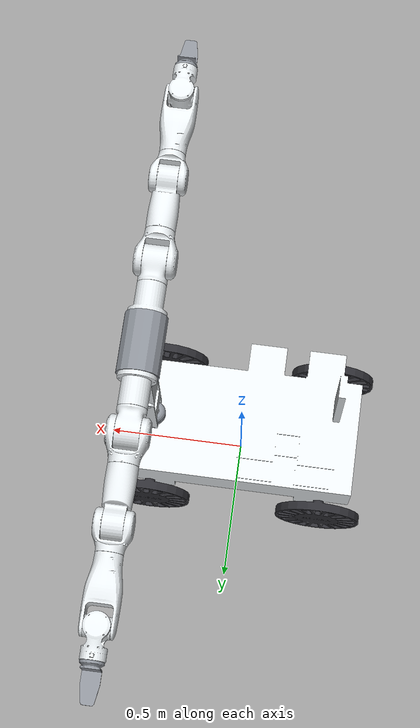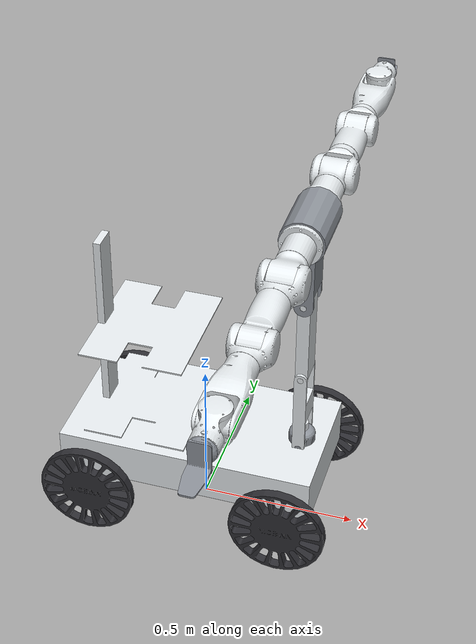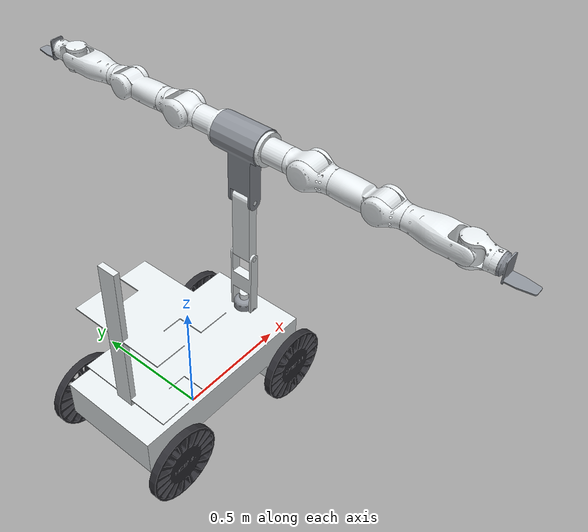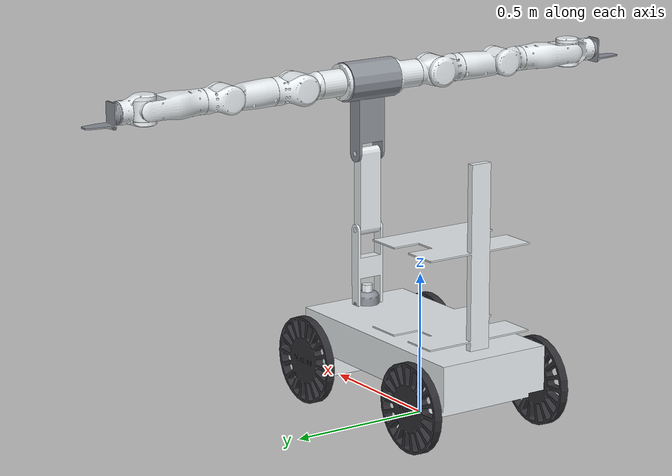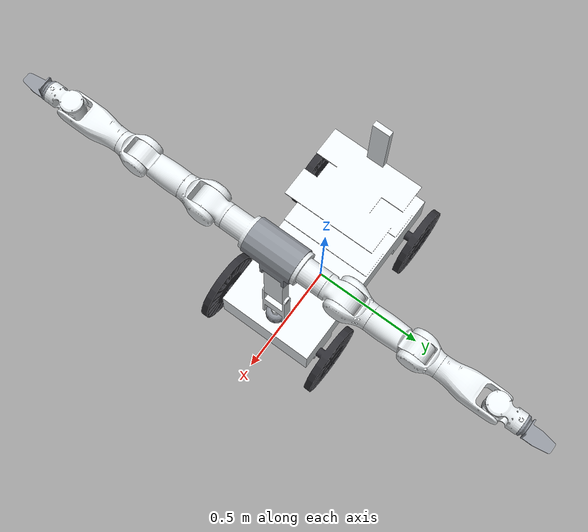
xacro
<?xml version="1.0"?>
<robot name="dhl" xmlns:xacro="http://www.ros.org/wiki/xacro">

  <xacro:arg name="wheels_fixed" default="false" />

  <!-- ============================ units ============================ -->
  <xacro:property name="mm" value="0.001" />
  <xacro:property name="PI" value="3.14159265358979" />
  <xacro:property name="mesh_scale" value="0.001 0.001 0.001" />

  <!-- Placeholders: the export gives effort=0 velocity=0, which no
       controller can use. Override on the xacro command line if needed. -->
  <xacro:property name="arm_effort" value="100.0" />
  <xacro:property name="arm_velocity" value="3.14" />
  <xacro:property name="torso_effort" value="300.0" />
  <xacro:property name="torso_velocity" value="1.57" />
  <xacro:property name="wheel_effort" value="100.0" />
  <xacro:property name="wheel_velocity" value="10.0" />

  <!-- TODO: torso ranges were not supplied - these are placeholders. -->
  <xacro:property name="torso1_lower" value="${-PI}" />
  <xacro:property name="torso1_upper" value="${PI}" />
  <xacro:property name="torso2_lower" value="${-PI/2}" />
  <xacro:property name="torso2_upper" value="${PI/2}" />
  <xacro:property name="torso3_lower" value="${-2.618}" />
  <xacro:property name="torso3_upper" value="${2.618}" />
  <xacro:property name="torso4_lower" value="${-2.618}" />
  <xacro:property name="torso4_upper" value="${2.618}" />

  <xacro:include filename="$(find dhl_description)/urdf/arm7_left.xacro" />
  <xacro:include filename="$(find dhl_description)/urdf/arm7_right.xacro" />

  <!-- ========================== materials ========================== -->
  <material name="dhl_light">
    <color rgba="0.898 0.918 0.929 1.0" />
  </material>
  <material name="dhl_grey">
    <color rgba="0.55 0.57 0.60 1.0" />
  </material>
  <material name="dhl_dark">
    <color rgba="0.18 0.18 0.20 1.0" />
  </material>

  <!-- Body built from one of the STL/ meshes (mm -> m). -->
  <xacro:macro name="dhl_body" params="mesh material">
    <visual>
      <origin xyz="0 0 0" rpy="0 0 0" />
      <geometry>
        <mesh filename="package://dhl_description/meshes/${mesh}" scale="${mesh_scale}" />
      </geometry>
      <material name="${material}" />
    </visual>
    <collision>
      <origin xyz="0 0 0" rpy="0 0 0" />
      <geometry>
        <mesh filename="package://dhl_description/meshes/${mesh}" scale="${mesh_scale}" />
      </geometry>
    </collision>
  </xacro:macro>

  <!-- ========================= mobile base ========================= -->
  <!-- Ground-projection frame; wheel radius is 155 mm, so the base
       origin (= wheel axle height) sits 155 mm above the floor. -->
  <link name="base_footprint" />

  <joint name="base_footprint_joint" type="fixed">
    <origin xyz="0 0 ${155*mm}" rpy="0 0 0" />
    <parent link="base_footprint" />
    <child link="mobile_base" />
  </joint>

  <link name="mobile_base">
    <xacro:dhl_body mesh="mobile_base.stl" material="dhl_light" />
  </link>

  <!-- Wheels: axis is the local Z, turned into a pitch axis by roll=90 deg.
       The four meshes are already handed, so all four share the same rpy. -->
  <xacro:macro name="dhl_wheel" params="name x y">
    <xacro:unless value="$(arg wheels_fixed)">
      <joint name="${name}_joint" type="continuous">
        <origin xyz="${x*mm} ${y*mm} 0" rpy="${radians(90)} 0 0" />
        <parent link="mobile_base" />
        <child link="${name}_Link" />
        <axis xyz="0 0 1" />
        <limit effort="${wheel_effort}" velocity="${wheel_velocity}" />
      </joint>
    </xacro:unless>
    <xacro:if value="$(arg wheels_fixed)">
      <joint name="${name}_joint" type="fixed">
        <origin xyz="${x*mm} ${y*mm} 0" rpy="${radians(90)} 0 0" />
        <parent link="mobile_base" />
        <child link="${name}_Link" />
      </joint>
    </xacro:if>
    <link name="${name}_Link">
      <xacro:dhl_body mesh="${name}.stl" material="dhl_dark" />
    </link>
  </xacro:macro>

  <xacro:dhl_wheel name="wheel_fr" x="316"  y="278.3"  />
  <xacro:dhl_wheel name="wheel_rr" x="-316" y="278.3"  />
  <xacro:dhl_wheel name="wheel_fl" x="316"  y="-278.3" />
  <xacro:dhl_wheel name="wheel_rl" x="-316" y="-278.3" />

  <!-- ============================ torso ============================ -->
  <joint name="torso_joint1" type="revolute">
    <origin xyz="${323*mm} 0 ${119.5*mm}" rpy="0 0 0" />
    <parent link="mobile_base" />
    <child link="torso_link1" />
    <axis xyz="0 0 1" />
    <limit lower="${torso1_lower}" upper="${torso1_upper}"
           effort="${torso_effort}" velocity="${torso_velocity}" />
  </joint>
  <link name="torso_link1">
    <xacro:dhl_body mesh="torso_joint1.stl" material="dhl_grey" />
  </link>

  <joint name="torso_joint2" type="revolute">
    <origin xyz="0 0 ${43*mm}" rpy="${radians(90)} 0 0" />
    <parent link="torso_link1" />
    <child link="torso_link2" />
    <axis xyz="0 0 1" />
    <limit lower="${torso2_lower}" upper="${torso2_upper}"
           effort="${torso_effort}" velocity="${torso_velocity}" />
  </joint>
  <link name="torso_link2">
    <xacro:dhl_body mesh="torso_joint2.stl" material="dhl_light" />
  </link>

  <joint name="torso_joint3" type="revolute">
    <origin xyz="0 ${275*mm} 0" rpy="0 0 0" />
    <parent link="torso_link2" />
    <child link="torso_link3" />
    <axis xyz="0 0 1" />
    <limit lower="${torso3_lower}" upper="${torso3_upper}"
           effort="${torso_effort}" velocity="${torso_velocity}" />
  </joint>
  <link name="torso_link3">
    <xacro:dhl_body mesh="torso_joint3.stl" material="dhl_light" />
  </link>

  <joint name="torso_joint4" type="revolute">
    <origin xyz="0 ${275*mm} 0" rpy="0 0 0" />
    <parent link="torso_link3" />
    <child link="torso_link4" />
    <axis xyz="0 0 1" />
    <limit lower="${torso4_lower}" upper="${torso4_upper}"
           effort="${torso_effort}" velocity="${torso_velocity}" />
  </joint>
  <link name="torso_link4">
    <xacro:dhl_body mesh="torso_joint4.stl" material="dhl_grey" />
  </link>

  <!-- ======================= arm mount brackets ======================= -->
  <joint name="right_mount" type="fixed">
    <origin xyz="0 ${260.5*mm} ${-100*mm}" rpy="${radians(180)} 0 ${radians(90)}" />
    <parent link="torso_link4" />
    <child link="right_arm_bracket" />
  </joint>
  <link name="right_arm_bracket" />

  <joint name="left_mount" type="fixed">
    <origin xyz="0 ${260.5*mm} ${100*mm}" rpy="0 0 ${radians(90)}" />
    <parent link="torso_link4" />
    <child link="left_arm_bracket" />
  </joint>
  <link name="left_arm_bracket" />

  <!-- ============================= arms ============================= -->
  <xacro:arm7_right suffix="_R" parent="right_arm_bracket">
    <origin xyz="0 0 0" rpy="0 0 0" />
  </xacro:arm7_right>

  <xacro:arm7_left suffix="_L" parent="left_arm_bracket">
    <origin xyz="0 0 0" rpy="0 0 0" />
  </xacro:arm7_left>

  <!-- ============================= hands ============================= -->
  <xacro:macro name="dhl_hand" params="suffix">
    <joint name="hand_mount${suffix}" type="fixed">
      <origin xyz="${-106*mm} 0 0" rpy="${radians(90)} ${radians(90)} 0" />
      <parent link="wrist2_Link${suffix}" />
      <child link="dhl_hand_4${suffix}" />
    </joint>
    <link name="dhl_hand_4${suffix}">
      <xacro:dhl_body mesh="dhl_hand_4.stl" material="dhl_grey" />
    </link>
    <!-- Grasp frame. The hand mesh runs from y = +5 mm to y = -120 mm in
         its own frame, so -120 mm on Y is the fingertip plane. -->
    <joint name="tcp_joint${suffix}" type="fixed">
      <origin xyz="0 ${-120*mm} 0" rpy="0 0 0" />
      <parent link="dhl_hand_4${suffix}" />
      <child link="tcp${suffix}" />
    </joint>
    <link name="tcp${suffix}" />
  </xacro:macro>

  <xacro:dhl_hand suffix="_R" />
  <xacro:dhl_hand suffix="_L" />

</robot>

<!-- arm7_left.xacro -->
<robot xmlns:xacro="http://www.ros.org/wiki/xacro">

  <xacro:macro name="arm7_left" params="suffix parent *origin">

    <joint name="arm_mount${suffix}" type="fixed">
      <xacro:insert_block name="origin" />
      <parent link="${parent}" />
      <child link="base_link${suffix}" />
    </joint>
    <link name="base_link${suffix}">
      <inertial>
        <origin xyz="-0.000862764030764301 0.00031138988302587 0.052915046110611" rpy="0 0 0" />
        <mass value="2.2944674733364" />
        <inertia ixx="0.0039428847098136" ixy="-8.66237396424278E-06" ixz="2.07592816683262E-06" iyy="0.00394284986069691" iyz="-2.3747123563094E-06" izz="0.00292966429948562" />
      </inertial>
      <visual>
        <origin xyz="0 0 0" rpy="0 0 0" />
        <geometry>
          <mesh filename="package://dhl_description/meshes/left_arm/base_link.STL" />
        </geometry>
        <material name="dhl_light">
        </material>
      </visual>
      <collision>
        <origin xyz="0 0 0" rpy="0 0 0" />
        <geometry>
          <mesh filename="package://dhl_description/meshes/left_arm/base_link.STL" />
        </geometry>
      </collision>
    </link>
    <link name="shoulder_Link${suffix}">
      <inertial>
        <origin xyz="0.000000 0.004800 -0.015770" rpy="0 0 0" />
        <mass value="2.22" />
        <inertia ixx="0.00307179" ixy="-0.00000013" ixz="0.00000216" iyy="0.00272992" iyz="0.00014996" izz="0.00328817" />
      </inertial>
      <visual>
        <origin xyz="0 0 0" rpy="0 0 0" />
        <geometry>
          <mesh filename="package://dhl_description/meshes/left_arm/shoulder_Link.STL" />
        </geometry>
        <material name="dhl_light">
        </material>
      </visual>
      <collision>
        <origin xyz="0 0 0" rpy="0 0 0" />
        <geometry>
          <mesh filename="package://dhl_description/meshes/left_arm/shoulder_Link.STL" />
        </geometry>
      </collision>
    </link>
    <joint name="j1${suffix}" type="revolute">
      <origin xyz="-0.00088174 0.00033281 0.187" rpy="-1.5708 0 0" />
      <parent link="base_link${suffix}" />
      <child link="shoulder_Link${suffix}" />
      <axis xyz="0 -1 0" />
      <limit lower="-3.0543" upper="3.0543" effort="${arm_effort}" velocity="${arm_velocity}" />
    </joint>
    <link name="upperarm1_Link${suffix}">
      <inertial>
        <origin xyz="0.000070 0.009790 0.037310" rpy="0 0 0" />
        <mass value="0.96" />
        <inertia ixx="0.00382572" ixy="-0.00000173" ixz="0.00000341" iyy="0.00277350" iyz="-0.00028470" izz="0.00280941" />
      </inertial>
      <visual>
        <origin xyz="0 0 0" rpy="0 0 0" />
        <geometry>
          <mesh filename="package://dhl_description/meshes/left_arm/upperarm1_Link.STL" />
        </geometry>
        <material name="dhl_light">
        </material>
      </visual>
      <collision>
        <origin xyz="0 0 0" rpy="0 0 0" />
        <geometry>
          <mesh filename="package://dhl_description/meshes/left_arm/upperarm1_Link.STL" />
        </geometry>
      </collision>
    </link>
    <joint name="j2${suffix}" type="revolute">
      <origin xyz="0 0 0" rpy="1.5708 0 0" />
      <parent link="shoulder_Link${suffix}" />
      <child link="upperarm1_Link${suffix}" />
      <axis xyz="0 1 0" />
      <limit lower="-1.9199" upper="1.9199" effort="${arm_effort}" velocity="${arm_velocity}" />
    </joint>
    <link name="upperarm2_Link${suffix}">
      <inertial>
        <origin xyz="-0.001010 0.069160 0.001140" rpy="0 0 0" />
        <mass value="2.3" />
        <inertia ixx="0.01212973" ixy="0.00004405" ixz="0.00000124" iyy="0.00219449" iyz="-0.00015887" izz="0.01214153" />
      </inertial>
      <visual>
        <origin xyz="0 0 0" rpy="0 0 0" />
        <geometry>
          <mesh filename="package://dhl_description/meshes/left_arm/upperarm2_Link.STL" />
        </geometry>
        <material name="dhl_light">
        </material>
      </visual>
      <collision>
        <origin xyz="0 0 0" rpy="0 0 0" />
        <geometry>
          <mesh filename="package://dhl_description/meshes/left_arm/upperarm2_Link.STL" />
        </geometry>
      </collision>
    </link>
    <joint name="j3${suffix}" type="revolute">
      <origin xyz="0 0 0.29" rpy="-1.5708 0 0" />
      <parent link="upperarm1_Link${suffix}" />
      <child link="upperarm2_Link${suffix}" />
      <axis xyz="0 -1 0" />
      <limit lower="-3.0543" upper="3.0543" effort="${arm_effort}" velocity="${arm_velocity}" />
    </joint>
    <link name="forearm1_Link${suffix}">
      <inertial>
        <origin xyz="0.000010 0.011690 0.021990" rpy="0 0 0" />
        <mass value="0.8" />
        <inertia ixx="0.00240004" ixy="-0.00000026" ixz="0.00000096" iyy="0.00170043" iyz="-0.00018737" izz="0.00190879" />
      </inertial>
      <visual>
        <origin xyz="0 0 0" rpy="0 0 0" />
        <geometry>
          <mesh filename="package://dhl_description/meshes/left_arm/forearm1_Link.STL" />
        </geometry>
        <material name="dhl_light">
        </material>
      </visual>
      <collision>
        <origin xyz="0 0 0" rpy="0 0 0" />
        <geometry>
          <mesh filename="package://dhl_description/meshes/left_arm/forearm1_Link.STL" />
        </geometry>
      </collision>
    </link>
    <joint name="j4${suffix}" type="revolute">
      <origin xyz="0 0 0" rpy="1.5708 0 0" />
      <parent link="upperarm2_Link${suffix}" />
      <child link="forearm1_Link${suffix}" />
      <axis xyz="0 1 0" />
      <limit lower="-1.309" upper="1.9199" effort="${arm_effort}" velocity="${arm_velocity}" />
    </joint>
    <link name="forearm2_Link${suffix}">
      <inertial>
        <origin xyz="0.000000 0.126280 -0.000990" rpy="0 0 0" />
        <mass value="1.87" />
        <inertia ixx="0.00902177" ixy="0.00000825" ixz="-0.00000334" iyy="0.00233497" iyz="0.00010800" izz="0.00837087" />
      </inertial>
      <visual>
        <origin xyz="0 0 0" rpy="0 0 0" />
        <geometry>
          <mesh filename="package://dhl_description/meshes/left_arm/forearm2_Link.STL" />
        </geometry>
        <material name="dhl_light">
        </material>
      </visual>
      <collision>
        <origin xyz="0 0 0" rpy="0 0 0" />
        <geometry>
          <mesh filename="package://dhl_description/meshes/left_arm/forearm2_Link.STL" />
        </geometry>
      </collision>
    </link>
    <joint name="j5${suffix}" type="revolute">
      <origin xyz="0 0 0.31" rpy="-1.5708 0 0" />
      <parent link="forearm1_Link${suffix}" />
      <child link="forearm2_Link${suffix}" />
      <axis xyz="0 -1 0" />
      <limit lower="-3.0543" upper="3.0543" effort="${arm_effort}" velocity="${arm_velocity}" />
    </joint>
    <link name="wrist1_Link${suffix}">
      <inertial>
        <origin xyz="-0.010760 0.000120 0.003200" rpy="0 0 0" />
        <mass value="1.1" />
        <inertia ixx="0.00136163" ixy="0.00000105" ixz="0.00001328" iyy="0.00180779" iyz="-0.00000622" izz="0.00162521" />
      </inertial>
      <visual>
        <origin xyz="0 0 0" rpy="0 0 0" />
        <geometry>
          <mesh filename="package://dhl_description/meshes/left_arm/wrist1_Link.STL" />
        </geometry>
        <material name="dhl_light">
        </material>
      </visual>
      <collision>
        <origin xyz="0 0 0" rpy="0 0 0" />
        <geometry>
          <mesh filename="package://dhl_description/meshes/left_arm/wrist1_Link.STL" />
        </geometry>
      </collision>
    </link>
    <joint name="j6${suffix}" type="revolute">
      <origin xyz="0 0 0" rpy="1.5708 0 1.5708" />
      <parent link="forearm2_Link${suffix}" />
      <child link="wrist1_Link${suffix}" />
      <axis xyz="0 1 0" />
      <limit lower="-1.2217" upper="1.2217" effort="${arm_effort}" velocity="${arm_velocity}" />
    </joint>
    <link name="wrist2_Link${suffix}">
      <inertial>
        <origin xyz="-0.092620 0.000400 0.002160" rpy="0 0 0" />
        <mass value="0.16" />
        <inertia ixx="0.00015266" ixy="0.00000065" ixz="0.00000134" iyy="0.00009604" iyz="0.00000032" izz="0.00008217" />
      </inertial>
      <visual>
        <origin xyz="0 0 0" rpy="0 0 0" />
        <geometry>
          <mesh filename="package://dhl_description/meshes/left_arm/wrist2_Link.STL" />
        </geometry>
        <material name="dhl_light">
        </material>
      </visual>
      <collision>
        <origin xyz="0 0 0" rpy="0 0 0" />
        <geometry>
          <mesh filename="package://dhl_description/meshes/left_arm/wrist2_Link.STL" />
        </geometry>
      </collision>
    </link>
    <joint name="j7${suffix}" type="revolute">
      <origin xyz="0 0 0" rpy="0 0 0" />
      <parent link="wrist1_Link${suffix}" />
      <child link="wrist2_Link${suffix}" />
      <axis xyz="0 -6.9505E-05 1" />
      <limit lower="-1.4835" upper="1.4835" effort="${arm_effort}" velocity="${arm_velocity}" />
    </joint>

  </xacro:macro>

</robot>

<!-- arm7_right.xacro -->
<robot xmlns:xacro="http://www.ros.org/wiki/xacro">

  <xacro:macro name="arm7_right" params="suffix parent *origin">

    <joint name="arm_mount${suffix}" type="fixed">
      <xacro:insert_block name="origin" />
      <parent link="${parent}" />
      <child link="base_link${suffix}" />
    </joint>
    <link name="base_link${suffix}">
      <inertial>
        <origin xyz="0.000862764030764298 -0.00031138988302587 0.052915046110611" rpy="0 0 0" />
        <mass value="2.2944674733364" />
        <inertia ixx="0.0039428847098136" ixy="-8.6623739642428E-06" ixz="-2.07592816683265E-06" iyy="0.00394284986069691" iyz="2.37471235630945E-06" izz="0.00292966429948562" />
      </inertial>
      <visual>
        <origin xyz="0 0 0" rpy="0 0 0" />
        <geometry>
          <mesh filename="package://dhl_description/meshes/right_arm/base_link.STL" />
        </geometry>
        <material name="dhl_light">
        </material>
      </visual>
      <collision>
        <origin xyz="0 0 0" rpy="0 0 0" />
        <geometry>
          <mesh filename="package://dhl_description/meshes/right_arm/base_link.STL" />
        </geometry>
      </collision>
    </link>
    <link name="shoulder_Link${suffix}">
      <inertial>
        <origin xyz="0.000000 0.004800 0.015770" rpy="0 0 0" />
        <mass value="2.22" />
        <inertia ixx="0.00307179" ixy="0.00000013" ixz="0.00000216" iyy="0.00272992" iyz="-0.00014996" izz="0.00328817" />
      </inertial>
      <visual>
        <origin xyz="0 0 0" rpy="0 0 0" />
        <geometry>
          <mesh filename="package://dhl_description/meshes/right_arm/shoulder_Link.STL" />
        </geometry>
        <material name="dhl_light">
        </material>
      </visual>
      <collision>
        <origin xyz="0 0 0" rpy="0 0 0" />
        <geometry>
          <mesh filename="package://dhl_description/meshes/right_arm/shoulder_Link.STL" />
        </geometry>
      </collision>
    </link>
    <joint name="j1${suffix}" type="revolute">
      <origin xyz="0.00088174 -0.00033281 0.187" rpy="-1.5708 0 0" />
      <parent link="base_link${suffix}" />
      <child link="shoulder_Link${suffix}" />
      <axis xyz="0 -1 0" />
      <limit lower="-3.0543" upper="3.0543" effort="${arm_effort}" velocity="${arm_velocity}" />
    </joint>
    <link name="upperarm1_Link${suffix}">
      <inertial>
        <origin xyz="0.000050 -0.009830 0.037310" rpy="0 0 0" />
        <mass value="0.96" />
        <inertia ixx="0.00382502" ixy="-0.00000056" ixz="0.00000333" iyy="0.00277350" iyz="0.00028277" izz="0.00280871" />
      </inertial>
      <visual>
        <origin xyz="0 0 0" rpy="0 0 0" />
        <geometry>
          <mesh filename="package://dhl_description/meshes/right_arm/upperarm1_Link.STL" />
        </geometry>
        <material name="dhl_light">
        </material>
      </visual>
      <collision>
        <origin xyz="0 0 0" rpy="0 0 0" />
        <geometry>
          <mesh filename="package://dhl_description/meshes/right_arm/upperarm1_Link.STL" />
        </geometry>
      </collision>
    </link>
    <joint name="j2${suffix}" type="revolute">
      <origin xyz="0 0 0" rpy="1.5708 0 0" />
      <parent link="shoulder_Link${suffix}" />
      <child link="upperarm1_Link${suffix}" />
      <axis xyz="0 1 0" />
      <limit lower="-1.9199" upper="1.9199" effort="${arm_effort}" velocity="${arm_velocity}" />
    </joint>
    <link name="upperarm2_Link${suffix}">
      <inertial>
        <origin xyz="-0.000930 0.069130 -0.000910" rpy="0 0 0" />
        <mass value="2.30" />
        <inertia ixx="0.01212506" ixy="0.00003788" ixz="0.00000205" iyy="0.01213635" iyz="0.00020461" izz="0.01213635" />
      </inertial>
      <visual>
        <origin xyz="0 0 0" rpy="0 0 0" />
        <geometry>
          <mesh filename="package://dhl_description/meshes/right_arm/upperarm2_Link.STL" />
        </geometry>
        <material name="dhl_light">
        </material>
      </visual>
      <collision>
        <origin xyz="0 0 0" rpy="0 0 0" />
        <geometry>
          <mesh filename="package://dhl_description/meshes/right_arm/upperarm2_Link.STL" />
        </geometry>
      </collision>
    </link>
    <joint name="j3${suffix}" type="revolute">
      <origin xyz="0 0 0.29" rpy="-1.5708 0 0" />
      <parent link="upperarm1_Link${suffix}" />
      <child link="upperarm2_Link${suffix}" />
      <axis xyz="0 -1 0" />
      <limit lower="-3.0543" upper="3.0543" effort="${arm_effort}" velocity="${arm_velocity}" />
    </joint>
    <link name="forearm1_Link${suffix}">
      <inertial>
        <origin xyz="-0.000040 -0.011750 0.021910" rpy="0 0 0" />
        <mass value="0.79" />
        <inertia ixx="0.00239652" ixy="0.00000012" ixz="-0.00000039" iyy="0.00169836" iyz="0.00018594" izz="0.00190534" />
      </inertial>
      <visual>
        <origin xyz="0 0 0" rpy="0 0 0" />
        <geometry>
          <mesh filename="package://dhl_description/meshes/right_arm/forearm1_Link.STL" />
        </geometry>
        <material name="dhl_light">
        </material>
      </visual>
      <collision>
        <origin xyz="0 0 0" rpy="0 0 0" />
        <geometry>
          <mesh filename="package://dhl_description/meshes/right_arm/forearm1_Link.STL" />
        </geometry>
      </collision>
    </link>
    <joint name="j4${suffix}" type="revolute">
      <origin xyz="0 0 0" rpy="1.5708 0 0" />
      <parent link="upperarm2_Link${suffix}" />
      <child link="forearm1_Link${suffix}" />
      <axis xyz="0 1 0" />
      <limit lower="-1.309" upper="1.9199" effort="${arm_effort}" velocity="${arm_velocity}" />
    </joint>
    <link name="forearm2_Link${suffix}">
      <inertial>
        <origin xyz="0.000070 0.123840 0.001740" rpy="0 0 0" />
        <mass value="1.9" />
        <inertia ixx="0.00963393" ixy="-0.00000280" ixz="-0.00000308" iyy="0.00239506" iyz="-0.00028959" izz="0.00893692" />
      </inertial>
      <visual>
        <origin xyz="0 0 0" rpy="0 0 0" />
        <geometry>
          <mesh filename="package://dhl_description/meshes/right_arm/forearm2_Link.STL" />
        </geometry>
        <material name="dhl_light">
        </material>
      </visual>
      <collision>
        <origin xyz="0 0 0" rpy="0 0 0" />
        <geometry>
          <mesh filename="package://dhl_description/meshes/right_arm/forearm2_Link.STL" />
        </geometry>
      </collision>
    </link>
    <joint name="j5${suffix}" type="revolute">
      <origin xyz="0 0 0.31" rpy="-1.5708 0 0" />
      <parent link="forearm1_Link${suffix}" />
      <child link="forearm2_Link${suffix}" />
      <axis xyz="0 -1 0" />
      <limit lower="-3.0543" upper="3.0543" effort="${arm_effort}" velocity="${arm_velocity}" />
    </joint>
    <link name="wrist1_Link${suffix}">
      <inertial>
        <origin xyz="-0.010760 -0.000120 -0.003200" rpy="0 0 0" />
        <mass value="1.1" />
        <inertia ixx="0.00136162" ixy="-0.00000104" ixz="-0.00001315" iyy="0.00180779" iyz="-0.00000622" izz="0.00162522" />
      </inertial>
      <visual>
        <origin xyz="0 0 0" rpy="0 0 0" />
        <geometry>
          <mesh filename="package://dhl_description/meshes/right_arm/wrist1_Link.STL" />
        </geometry>
        <material name="dhl_light">
        </material>
      </visual>
      <collision>
        <origin xyz="0 0 0" rpy="0 0 0" />
        <geometry>
          <mesh filename="package://dhl_description/meshes/right_arm/wrist1_Link.STL" />
        </geometry>
      </collision>
    </link>
    <joint name="j6${suffix}" type="revolute">
      <origin xyz="0 0 0" rpy="1.5708 0 1.5708" />
      <parent link="forearm2_Link${suffix}" />
      <child link="wrist1_Link${suffix}" />
      <axis xyz="0 1 0" />
      <limit lower="-1.2217" upper="1.2217" effort="${arm_effort}" velocity="${arm_velocity}" />
    </joint>
    <link name="wrist2_Link${suffix}">
      <inertial>
        <origin xyz="-0.092670 0.000310 0.002500" rpy="0 0 0" />
        <mass value="0.16" />
        <inertia ixx="0.00015015" ixy="0.00000103" ixz="0.00000163" iyy="0.00009349" iyz="0.00000033" izz="0.00008207" />
      </inertial>
      <visual>
        <origin xyz="0 0 0" rpy="0 0 0" />
        <geometry>
          <mesh filename="package://dhl_description/meshes/right_arm/wrist2_Link.STL" />
        </geometry>
        <material name="dhl_light">
        </material>
      </visual>
      <collision>
        <origin xyz="0 0 0" rpy="0 0 0" />
        <geometry>
          <mesh filename="package://dhl_description/meshes/right_arm/wrist2_Link.STL" />
        </geometry>
      </collision>
    </link>
    <joint name="j7${suffix}" type="revolute">
      <origin xyz="0 0 0" rpy="0 0 0" />
      <parent link="wrist1_Link${suffix}" />
      <child link="wrist2_Link${suffix}" />
      <axis xyz="0 0 1" />
      <limit lower="-1.4835" upper="1.4835" effort="${arm_effort}" velocity="${arm_velocity}" />
    </joint>

  </xacro:macro>

</robot>
